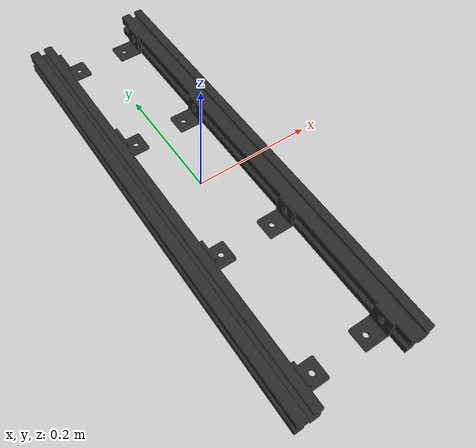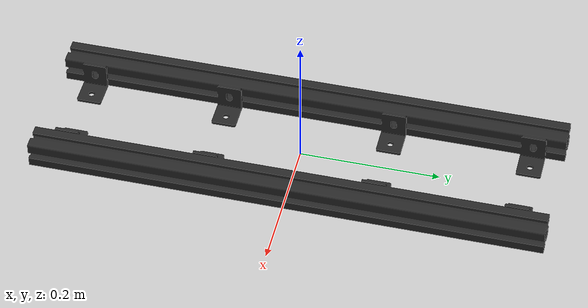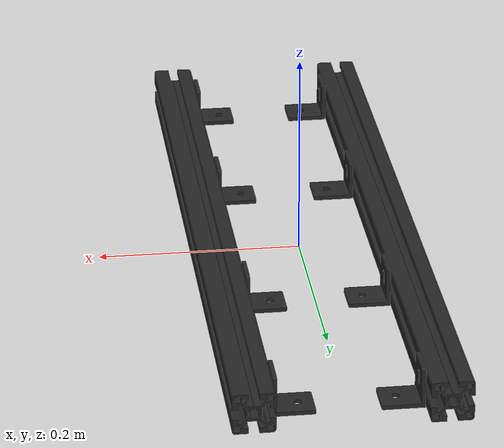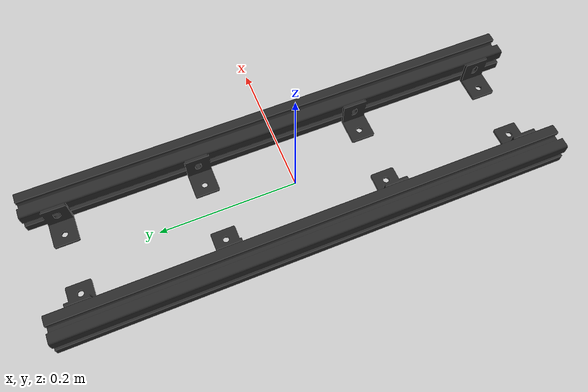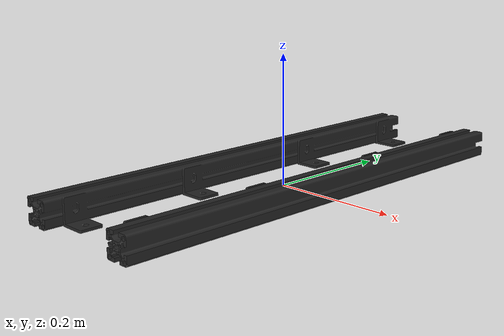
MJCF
<mujoco model="lift_rails">
  <default>
    <default class="visual">
      <geom group="2" type="mesh" contype="0" conaffinity="0"/>
    </default>
    <default class="collision">
      <geom group="3" type="mesh"/>
    </default>
  </default>
  <asset>
    <material name="mtl_lift_rails" specular="0.20000000000000004" shininess="1.0" rgba="0.14901961 0.14901961 0.14901961 1.0"/>
    <mesh file="lift_rails.obj"/>
  </asset>
  <worldbody>
    <body name="lift_rails">
      <geom material="mtl_lift_rails" mesh="lift_rails" class="visual"/>
      <geom mesh="lift_rails" class="collision"/>
    </body>
  </worldbody>
</mujoco>
